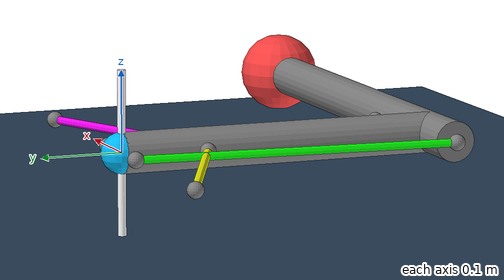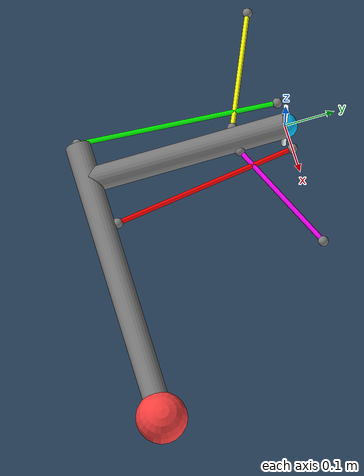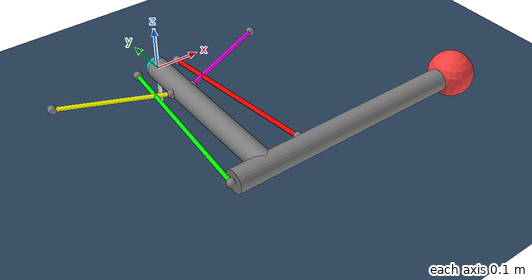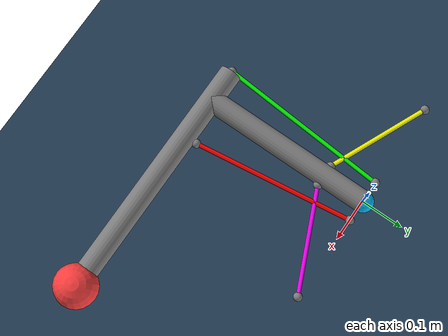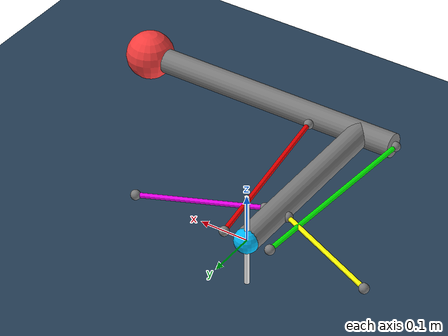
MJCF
<mujoco model="two-joint-limb">

  <asset>
    <texture name="grid" type="2d" builtin="checker" width="512" height="512" rgb1=".1 .2 .3"
      rgb2=".2 .3 .4" />
    <material name="grid" texture="grid" texrepeat="10 10" texuniform="true" reflectance=".2" />
  </asset>

  <default>
    <joint damping="0.1" />
    <muscle ctrllimited="true" ctrlrange="0 1" />
  </default>

  <worldbody>
    <light name="light" pos="0 0 5" diffuse=".1 .1 .1" />

    <!-- HORIZONTAL PLANE-->
    <geom type="plane" pos="0 0 -.1" size="10 10 .01" material="grid" />

    <!-- TRUNK -->
    <body name="trunk" pos="0 0 0">

      <!-- tendon attachment sites -->
      <site name="deltoid1" pos=".25 0 0" size="0.01" />
      <site name="latissimus1" pos="-0.25 0 0" size="0.01" />

      <!-- UPPER ARM -->
      <body name="upper_arm" pos="0 0 0">

        <!-- shoulder -->
        <joint name="shoulder" type="hinge" axis="0 0 1" range="-60 60" />

        <!-- tendon attachment sites -->
        <site name="deltoid2" pos="0.025 -.1 0" size="0.01" />
        <site name="latissimus2" pos="-0.025 -.1 0" size="0.01" />
        <site name="biceps1" pos="0.05 0 0" size="0.01" />
        <site name="triceps1" pos="-0.05 0 0" size="0.01" />

        <!-- humerus -->
        <geom name="humerus" type="cylinder" size="0.025" fromto="0 0 0 0 -.4 0" />

        <!-- LOWER ARM -->
        <body name="lower_arm" pos="0 -0.4 0">

          <!-- elbow -->
          <joint name="elbow" type="hinge" axis="0 0 1" range="-60 60" />

          <!-- tendon attachment sites -->
          <site name="biceps2" pos=".1 .03 0" size="0.01" />
          <site name="triceps2" pos="-.08 0 0" size="0.01" />

          <!-- radius -->
          <geom name="radius" type="cylinder" size="0.025" fromto="-.075 0 0 .5 0 0" />

          <!-- HAND -->
          <body name="hand" pos="0.5 0 0">
            <geom name="hand" type="sphere" size="0.05" pos="0 0 0" rgba="1 .25 .25 1" />
            <site name="nail2" pos="0 0 0" />
          </body>
        </body>
      </body>
    </body>

    <!-- TARGET -->
    <body name="target" mocap="true" pos="0 0 0">
      <geom name="target" size=".025" type="sphere" contype="0" conaffinity="0"
        rgba="0 .75 1 1" />
    </body>

    <!-- NAIL -->
    <body name="nail" mocap="true" pos="0 0 0">
      <geom name="nail" type="cylinder" size=".005" fromto="0 0 -.1 0 0 .1" contype="0"
        conaffinity="0" rgba="1 1 1 1" />
      <site name="nail1" pos="0 0 0" />
    </body>
  </worldbody>

  <equality>
    <connect name="nail_eq" active="false" site1="nail1" site2="nail2" />
  </equality>

  <tendon>
    <spatial name="deltoid_tendon" limited="true" range="0 1" width="0.005" rgba="1 0 1 1">
      <site site="deltoid1" />
      <site site="deltoid2" />
    </spatial>

    <spatial name="latissimus_tendon" limited="true" range="0 1" width="0.005" rgba="1 1 0 1">
      <site site="latissimus1" />
      <site site="latissimus2" />
    </spatial>

    <spatial name="biceps_tendon" limited="true" range="0 .485" width="0.005" rgba="1 0 0 1">
      <site site="biceps1" />
      <geom geom="humerus" />
      <site site="biceps2" />
    </spatial>

    <spatial name="triceps_tendon" limited="true" range="0 .5" width="0.005" rgba="0 1 0 1">
      <site site="triceps1" />
      <geom geom="radius" />
      <site site="triceps2" />
    </spatial>
  </tendon>

  <actuator>
    <muscle name="deltoid" tendon="deltoid_tendon" ctrlrange="0 1" force="100" />
    <muscle name="latissimus" tendon="latissimus_tendon" ctrlrange="0 1" force="100" />
    <muscle name="biceps" tendon="biceps_tendon" ctrlrange="0 1" force="100" />
    <muscle name="triceps" tendon="triceps_tendon" ctrlrange="0 1" force="100" />
  </actuator>

  <sensor>
    <actuatorpos name="deltoid_length" actuator="deltoid" />
    <actuatorpos name="latissimus_length" actuator="latissimus" />
    <actuatorpos name="biceps_length" actuator="biceps" />
    <actuatorpos name="triceps_length" actuator="triceps" />
    <actuatorvel name="deltoid_velocity" actuator="deltoid" />
    <actuatorvel name="latissimus_velocity" actuator="latissimus" />
    <actuatorvel name="biceps_velocity" actuator="biceps" />
    <actuatorvel name="triceps_velocity" actuator="triceps" />
    <actuatorfrc name="deltoid_force" actuator="deltoid" />
    <actuatorfrc name="latissimus_force" actuator="latissimus" />
    <actuatorfrc name="biceps_force" actuator="biceps" />
    <actuatorfrc name="triceps_force" actuator="triceps" />
  </sensor>

</mujoco>
